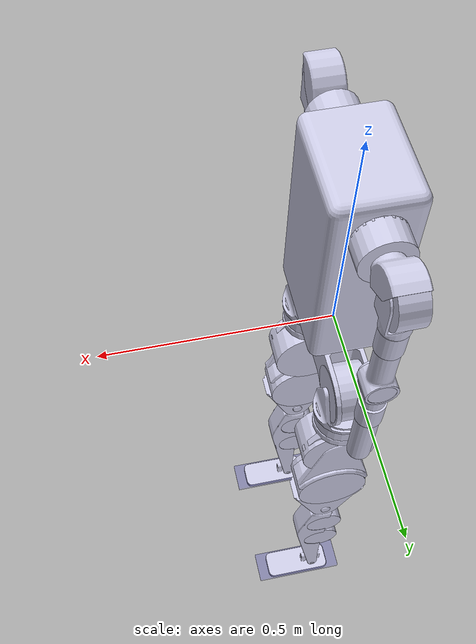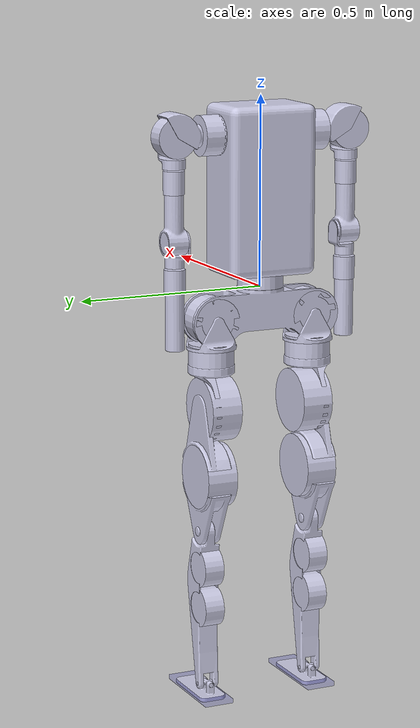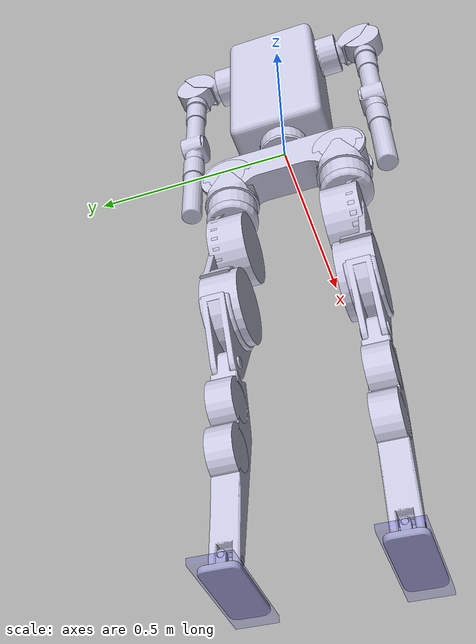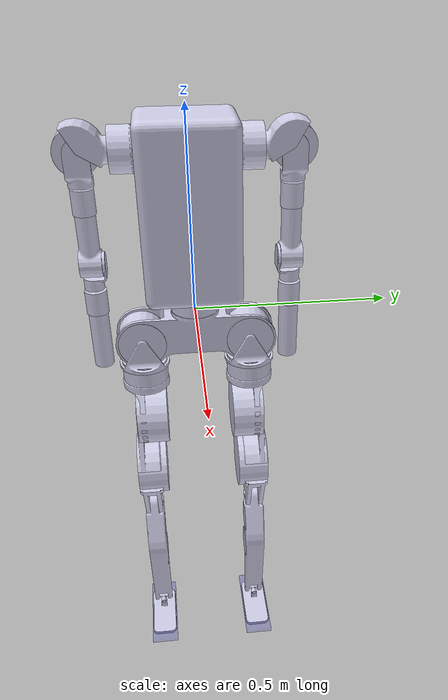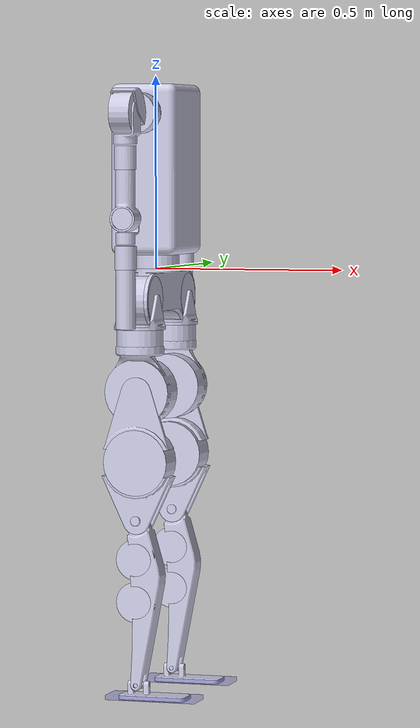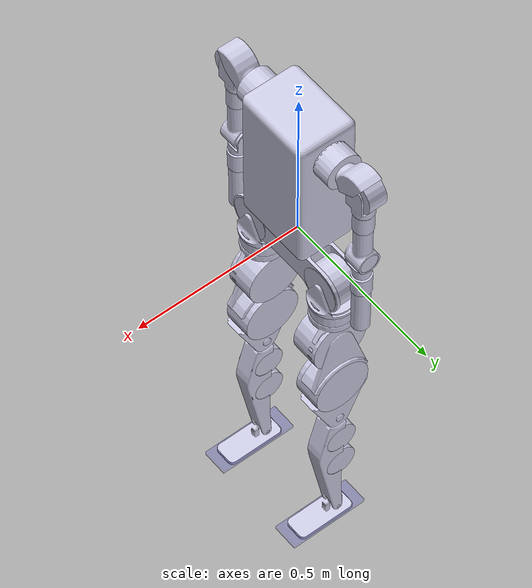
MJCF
<mujoco model="humanoid_ryp_merged">
  <compiler angle="radian" meshdir="meshes/"/>

  <asset>
    <mesh name="pelvis_link" file="pelvis_link.stl"/>
    <mesh name="left_hip_pitch_link" file="left_hip_pitch_link.stl"/>
    <mesh name="left_hip_roll_link" file="left_hip_roll_link.stl"/>
    <mesh name="left_hip_yaw_link" file="left_hip_yaw_link.stl"/>
    <mesh name="left_knee_pitch_link" file="left_knee_pitch_link.stl"/>
    <mesh name="left_ankle_pitch_link" file="left_ankle_pitch_link.stl"/>
    <mesh name="left_ankle_roll_link" file="left_ankle_roll_link.stl"/>
    <mesh name="right_hip_pitch_link" file="right_hip_pitch_link.stl"/>
    <mesh name="right_hip_roll_link" file="right_hip_roll_link.stl"/>
    <mesh name="right_hip_yaw_link" file="right_hip_yaw_link.stl"/>
    <mesh name="right_knee_pitch_link" file="right_knee_pitch_link.stl"/>
    <mesh name="right_ankle_pitch_link" file="right_ankle_pitch_link.stl"/>
    <mesh name="right_ankle_roll_link" file="right_ankle_roll_link.stl"/>
    <mesh name="torso_link" file="torso_link.stl"/>
    <mesh name="left_shoulder_pitch_link" file="left_shoulder_pitch_link.stl"/>
    <mesh name="left_shoulder_roll_link" file="left_shoulder_roll_link.stl"/>
    <mesh name="left_shoulder_yaw_link" file="left_shoulder_yaw_link.stl"/>
    <mesh name="left_elbow_pitch_link" file="left_elbow_pitch_link.stl"/>
    <mesh name="left_elbow_yaw_link" file="left_elbow_yaw_link.stl"/>
    <mesh name="right_shoulder_pitch_link" file="right_shoulder_pitch_link.stl"/>
    <mesh name="right_shoulder_roll_link" file="right_shoulder_roll_link.stl"/>
    <mesh name="right_shoulder_yaw_link" file="right_shoulder_yaw_link.stl"/>
    <mesh name="right_elbow_pitch_link" file="right_elbow_pitch_link.stl"/>
    <mesh name="right_elbow_yaw_link" file="right_elbow_yaw_link.stl"/>
  </asset>

  <worldbody>
    <body name="root">
      <inertial pos="0.000208719 -6.88131e-05 -0.053816" quat="0.707231 0.706977 -0.0020216 0.00199889" mass="8.47532" diaginertia="0.124667 0.111724 0.0247263"/>
      <joint name="floating_base_joint" type="free" limited="false" actuatorfrclimited="false"/>
      <geom type="mesh" contype="0" conaffinity="0" rgba="0.8 0.8 0.9 1" mesh="pelvis_link"/>
      <geom size="0.062 0.0425" pos="0.0005 0.139997 -0.077" quat="0.70711 0 0.707103 0" type="cylinder" contype="0" conaffinity="0" rgba="0.8 0.8 0.9 1"/>
      <geom size="0.062 0.0425" pos="0.0005 -0.140003 -0.077" quat="0.70711 0 0.707103 0" type="cylinder" contype="0" conaffinity="0" rgba="0.8 0.8 0.9 1"/>
      <geom size="0.06 0.03205" pos="5.16504e-07 -5.04132e-08 0.0250091" type="cylinder" contype="0" conaffinity="0" rgba="0.8 0.8 0.9 1"/>
      <site name="imu_mount" pos="0 0 0"/>
      <site name="torso_mount" pos="0 0 0.0475"/>
      <site name="imu_site" pos="0 0 0"/>
      <body name="left_hip_roll_link" pos="0.043 0.14 -0.077">
        <inertial pos="-0.0424996 8.50001e-08 -0.0817088" quat="9.67166e-07 0.70711 9.67175e-07 0.707104" mass="1.95758" diaginertia="0.00390852 0.00350271 0.00300279"/>
        <joint name="left_hip_roll_joint" pos="0 0 0" axis="1 0 0" range="-0.5 1.047" armature="0.32256" damping="0.766" frictionloss="2.492"/>
        <geom type="mesh" contype="0" conaffinity="0" rgba="0.8 0.8 0.9 1" mesh="left_hip_roll_link"/>
        <geom size="0.06 0.03205" pos="-0.0424995 1.07586e-07 -0.0930091" type="cylinder" contype="0" conaffinity="0" rgba="0.8 0.8 0.9 1"/>
        <body name="left_hip_yaw_link" pos="-0.0425 7.10469e-08 -0.1155">
          <inertial pos="-8.15282e-05 -0.0056514 -0.107013" quat="0.706833 -0.0175567 0.018256 0.706927" mass="3.95732" diaginertia="0.0184829 0.0140436 0.0093499"/>
          <joint name="left_hip_yaw_joint" pos="0 0 0" axis="0 0 1" range="-2.722 2.722" armature="0.061488" damping="0.0069" frictionloss="0.576"/>
          <geom type="mesh" contype="0" conaffinity="0" rgba="0.8 0.8 0.9 1" mesh="left_hip_yaw_link"/>
          <geom size="0.085 0.0415" pos="-0.000100823 -0.008554 -0.121217" quat="0.70711 0.707103 0 0" type="cylinder" contype="0" conaffinity="0" rgba="0.8 0.8 0.9 1"/>
          <body name="left_hip_pitch_link" pos="0 0.0220001 -0.121">
            <inertial pos="-0.000160241 -0.0134881 -0.180496" quat="0.706764 -0.0149555 0.0149512 0.707133" mass="4.76011" diaginertia="0.0325838 0.0264769 0.0112813"/>
            <joint name="left_hip_pitch_joint" pos="0 0 0" axis="0 1 0" range="-3.1415 3.1415" armature="0.155952" damping="0.338" frictionloss="1.481"/>
            <geom type="mesh" contype="0" conaffinity="0" rgba="0.8 0.8 0.9 1" mesh="left_hip_pitch_link"/>
            <geom size="0.085 0.0415" pos="-0.000238364 -0.0176458 -0.179979" quat="0.70711 0.707103 0 0" type="cylinder" contype="0" conaffinity="0" rgba="0.8 0.8 0.9 1"/>
            <body name="left_knee_pitch_link" pos="0 -0.0091998 -0.33">
              <inertial pos="0.00791673 1.09261e-07 -0.172865" quat="0.70701 -0.00277597 -0.00195185 0.707195" mass="3.05882" diaginertia="0.0384643 0.0371959 0.0031252"/>
              <joint name="left_knee_pitch_joint" pos="0 0 0" axis="0 1 0" range="0 2.007" armature="0.155952" damping="0.338" frictionloss="1.481"/>
              <geom type="mesh" contype="0" conaffinity="0" rgba="0.8 0.8 0.9 1" mesh="left_knee_pitch_link"/>
              <geom size="0.0525 0.027" pos="-0.00015591 0.0004461 -0.100101" quat="0.70711 0.707103 0 0" type="cylinder" contype="0" conaffinity="0" rgba="0.8 0.8 0.9 1"/>
              <geom size="0.0525 0.027" pos="-0.000319571 -0.0004459 -0.209961" quat="0.70711 0.707103 0 0" type="cylinder" contype="0" conaffinity="0" rgba="0.8 0.8 0.9 1"/>
              <body name="left_ankle_pitch_link" pos="-0.000857798 2.61427e-07 -0.424999">
                <inertial pos="1.5474e-09 -1.5474e-09 8.61155e-09" quat="0.500032 0.500032 -0.499968 0.499968" mass="0.0915496" diaginertia="2.67722e-05 1.42226e-05 1.42226e-05"/>
                <joint name="left_ankle_pitch_joint" pos="0 0 0" axis="0 1 0" range="-1.221 0.872" armature="0.043416" damping="0.028" frictionloss="0.876"/>
                <geom type="mesh" contype="0" conaffinity="0" rgba="0.8 0.8 0.9 1" mesh="left_ankle_pitch_link"/>
                <body name="left_ankle_roll_link">
                  <inertial pos="0.0388421 1.81631e-08 -0.0295267" quat="0 0.715124 0 0.698997" mass="1.02847" diaginertia="0.00308315 0.00269298 0.000478241"/>
                  <joint name="left_ankle_roll_joint" pos="0 0 0" axis="1 0 0" range="-0.436 0.436" armature="0.043416" damping="0.028" frictionloss="0.876"/>
                  <geom type="mesh" contype="0" conaffinity="0" rgba="0.8 0.8 0.9 1" mesh="left_ankle_roll_link"/>
                  <geom name="left_foot_collision" size="0.12 0.04 0.006" pos="0.04135 0 -0.032" type="box" group="1" rgba="0 0 0.7 0.1"/>
                  <body name="left_foot" pos="0.04135 0 -0.037">
                    <inertial pos="0 0 0" mass="1e-06" diaginertia="1e-09 1e-09 1e-09"/>
                  </body>
                </body>
              </body>
            </body>
          </body>
        </body>
      </body>
      <body name="right_hip_roll_link" pos="0.043 -0.14 -0.077">
        <inertial pos="-0.0424996 3.47404e-08 -0.0817088" quat="6.69514e-07 0.70711 6.6952e-07 0.707104" mass="1.95758" diaginertia="0.00390852 0.00350271 0.00300279"/>
        <joint name="right_hip_roll_joint" pos="0 0 0" axis="1 0 0" range="-1.047 0.5" armature="0.32256" damping="0.766" frictionloss="2.492"/>
        <geom type="mesh" contype="0" conaffinity="0" rgba="0.8 0.8 0.9 1" mesh="right_hip_roll_link"/>
        <geom size="0.06 0.03205" pos="-0.0424995 5.03756e-08 -0.0930091" type="cylinder" contype="0" conaffinity="0" rgba="0.8 0.8 0.9 1"/>
        <body name="right_hip_yaw_link" pos="-0.0425 0 -0.1155">
          <inertial pos="-8.15502e-05 0.00565149 -0.106662" quat="0.706929 0.0181786 -0.0174774 0.706835" mass="3.95732" diaginertia="0.0184432 0.0140043 0.00935021"/>
          <joint name="right_hip_yaw_joint" pos="0 0 0" axis="0 0 1" range="-2.722 2.722" armature="0.061488" damping="0.0069" frictionloss="0.576"/>
          <geom type="mesh" contype="0" conaffinity="0" rgba="0.8 0.8 0.9 1" mesh="right_hip_yaw_link"/>
          <geom size="0.085 0.0415" pos="-0.00010085 0.0085541 -0.120783" quat="0.70711 0.707103 0 0" type="cylinder" contype="0" conaffinity="0" rgba="0.8 0.8 0.9 1"/>
          <body name="right_hip_pitch_link" pos="0 -0.022 -0.121">
            <inertial pos="-9.24443e-05 0.0134882 -0.180379" quat="0.707056 0.0149129 -0.0149165 0.706843" mass="4.76011" diaginertia="0.0325842 0.0264775 0.0112815"/>
            <joint name="right_hip_pitch_joint" pos="0 0 0" axis="0 1 0" range="-3.1415 3.1415" armature="0.155952" damping="0.338" frictionloss="1.481"/>
            <geom type="mesh" contype="0" conaffinity="0" rgba="0.8 0.8 0.9 1" mesh="right_hip_pitch_link"/>
            <geom size="0.085 0.0415" pos="-0.000137514 0.0176459 -0.179804" quat="0.70711 0.707103 0 0" type="cylinder" contype="0" conaffinity="0" rgba="0.8 0.8 0.9 1"/>
            <body name="right_knee_pitch_link" pos="0 0.0092 -0.33">
              <inertial pos="0.00818566 3.81344e-10 -0.172815" quat="0.707204 -0.00265843 -0.00348431 0.706996" mass="3.05882" diaginertia="0.0384988 0.0372265 0.00312924"/>
              <joint name="right_knee_pitch_joint" pos="0 0 0" axis="0 1 0" range="0 2.007" armature="0.155952" damping="0.338" frictionloss="1.481"/>
              <geom type="mesh" contype="0" conaffinity="0" rgba="0.8 0.8 0.9 1" mesh="right_knee_pitch_link"/>
              <geom size="0.0525 0.027" pos="-3.92528e-05 -0.000446 -0.0998958" quat="0.70711 0.707103 0 0" type="cylinder" contype="0" conaffinity="0" rgba="0.8 0.8 0.9 1"/>
              <geom size="0.0525 0.027" pos="-0.000101531 0.000446 -0.210046" quat="0.70711 0.707103 0 0" type="cylinder" contype="0" conaffinity="0" rgba="0.8 0.8 0.9 1"/>
              <body name="right_ankle_pitch_link" pos="0 0 -0.425">
                <inertial pos="1.5474e-09 -1.5474e-09 0" quat="0.5 0.5 -0.5 0.5" mass="0.0915496" diaginertia="2.67722e-05 1.42226e-05 1.42226e-05"/>
                <joint name="right_ankle_pitch_joint" pos="0 0 0" axis="0 1 0" range="-1.221 0.872" armature="0.043416" damping="0.028" frictionloss="0.876"/>
                <geom type="mesh" contype="0" conaffinity="0" rgba="0.8 0.8 0.9 1" mesh="right_ankle_pitch_link"/>
                <body name="right_ankle_roll_link">
                  <inertial pos="0.0388459 0 -0.0295218" quat="0 0.71508 0 0.699043" mass="1.02847" diaginertia="0.00308315 0.00269298 0.000478241"/>
                  <joint name="right_ankle_roll_joint" pos="0 0 0" axis="1 0 0" range="-0.436 0.436" armature="0.043416" damping="0.028" frictionloss="0.876"/>
                  <geom type="mesh" contype="0" conaffinity="0" rgba="0.8 0.8 0.9 1" mesh="right_ankle_roll_link"/>
                  <geom name="right_foot_collision" size="0.12 0.04 0.006" pos="0.04135 0 -0.032" type="box" group="1" rgba="0 0 0.7 0.1"/>
                  <body name="right_foot" pos="0.04135 0 -0.037">
                    <inertial pos="0 0 0" mass="1e-06" diaginertia="1e-09 1e-09 1e-09"/>
                  </body>
                </body>
              </body>
            </body>
          </body>
        </body>
      </body>
      <body name="torso_yaw_link" pos="0 0 0.0475">
        <inertial pos="0 0 0.227807" quat="1 0 0 -0.000206205" mass="15.3022" diaginertia="0.348334 0.281258 0.137515"/>
        <joint name="torso_yaw_joint" pos="0 0 0" axis="0 0 1" range="-1.5707 1.5707" armature="0.061488" damping="0.0069" frictionloss="0.576"/>
        <geom type="mesh" contype="0" conaffinity="0" rgba="0.8 0.8 0.9 1" mesh="torso_link"/>
        <geom size="0.0525 0.027" pos="0.000111292 0.147954 0.354996" quat="0.70711 0.707103 0 0" type="cylinder" contype="0" conaffinity="0" rgba="0.8 0.8 0.9 1"/>
        <geom size="0.0525 0.027" pos="-0.000111292 -0.147954 0.354996" quat="0.70711 0.707103 0 0" type="cylinder" contype="0" conaffinity="0" rgba="0.8 0.8 0.9 1"/>
        <site name="left_arm_mount" pos="0 0.176 0.355"/>
        <site name="right_arm_mount" pos="0 -0.176 0.355"/>
        <body name="torso" pos="0 0 0.355">
          <inertial pos="0 0 0" mass="1e-06" diaginertia="1e-09 1e-09 1e-09"/>
        </body>
        <body name="left_shoulder_pitch_link" pos="0 0.176 0.355">
          <inertial pos="-0.00306315 0.0620754 0.00444058" quat="0.727835 0.685332 0.0237004 0.00389183" mass="1.0821" diaginertia="0.00182356 0.00132748 0.00115062"/>
          <joint name="left_shoulder_pitch_joint" pos="0 0 0" axis="0 1 0" range="-2.618 2.007" armature="0.043416" damping="0.028" frictionloss="0.876"/>
          <geom type="mesh" contype="0" conaffinity="0" rgba="0.8 0.8 0.9 1" mesh="left_shoulder_pitch_link"/>
          <geom size="0.0525 0.027" pos="-0.003946 0.0698986 -4.59265e-05" quat="0.70711 0 0.707103 0" type="cylinder" contype="0" conaffinity="0" rgba="0.8 0.8 0.9 1"/>
          <body name="left_shoulder_roll_link" pos="0.024 0.07 0">
            <inertial pos="-0.0192802 7.42705e-09 -0.0545648" quat="0.96696 -2.1985e-07 0.254927 -8.33909e-07" mass="0.28974" diaginertia="0.000310056 0.000288331 0.000120903"/>
            <joint name="left_shoulder_roll_joint" pos="0 0 0" axis="1 0 0" range="-0.175 2.531" armature="0.043416" damping="0.028" frictionloss="0.876"/>
            <geom type="mesh" contype="0" conaffinity="0" rgba="0.8 0.8 0.9 1" mesh="left_shoulder_roll_link"/>
            <body name="left_shoulder_yaw_link" pos="-0.027 0 -0.1405">
              <inertial pos="8.58845e-07 -0.00134537 -0.0559306" quat="0.999944 -0.0105981 2.27804e-05 -7.5063e-06" mass="1.1219" diaginertia="0.00562987 0.00560549 0.000486935"/>
              <joint name="left_shoulder_yaw_joint" pos="0 0 0" axis="0 0 1" range="-2.88 2.88" armature="0.0178848" damping="0.014" frictionloss="0.23"/>
              <geom type="mesh" contype="0" conaffinity="0" rgba="0.8 0.8 0.9 1" mesh="left_shoulder_yaw_link"/>
              <geom size="0.028 0.03025" pos="5.24476e-06 -5.62893e-06 0.026002" type="cylinder" contype="0" conaffinity="0" rgba="0.8 0.8 0.9 1"/>
              <geom size="0.028 0.03025" pos="-2.68858e-06 -0.003998 -0.128007" quat="0.70711 0.707103 0 0" type="cylinder" contype="0" conaffinity="0" rgba="0.8 0.8 0.9 1"/>
              <body name="left_elbow_pitch_link" pos="0 -0.03 -0.128">
                <inertial pos="-1.67859e-06 0.0265135 -0.0778141" quat="0.995929 0.09014 2.39106e-05 -5.21924e-05" mass="0.603963" diaginertia="0.000815049 0.000801572 0.000237622"/>
                <joint name="left_elbow_pitch_joint" pos="0 0 0" axis="0 1 0" range="-2.182 0" armature="0.0178848" damping="0.014" frictionloss="0.23"/>
                <geom type="mesh" contype="0" conaffinity="0" rgba="0.8 0.8 0.9 1" mesh="left_elbow_pitch_link"/>
                <geom size="0.028 0.03025" pos="-2.68858e-06 0.0290072 -0.099498" type="cylinder" contype="0" conaffinity="0" rgba="0.8 0.8 0.9 1"/>
                <body name="left_elbow_yaw_link" pos="0 0.029 -0.1255">
                  <inertial pos="0 0 -0.0779665" mass="0.306173" diaginertia="0.000668211 0.000668211 9.56405e-05"/>
                  <joint name="left_elbow_yaw_joint" pos="0 0 0" axis="0 0 1" range="-2.356 2.356" armature="0.0178848" damping="0.014" frictionloss="0.23"/>
                  <geom type="mesh" contype="0" conaffinity="0" rgba="0.8 0.8 0.9 1" mesh="left_elbow_yaw_link"/>
                  <body name="left_end_effector" pos="0 0 -0.155">
                    <inertial pos="0 0 0" mass="1e-06" diaginertia="1e-09 1e-09 1e-09"/>
                  </body>
                </body>
              </body>
            </body>
          </body>
        </body>
        <body name="right_shoulder_pitch_link" pos="0 -0.176 0.355">
          <inertial pos="-0.00306315 -0.0622329 0.00444058" quat="0.684116 0.728978 -0.00396618 -0.0236854" mass="1.0821" diaginertia="0.00182624 0.00133024 0.00115053"/>
          <joint name="right_shoulder_pitch_joint" pos="0 0 0" axis="0 1 0" range="-2.618 2.007" armature="0.043416" damping="0.028" frictionloss="0.876"/>
          <geom type="mesh" contype="0" conaffinity="0" rgba="0.8 0.8 0.9 1" mesh="right_shoulder_pitch_link"/>
          <geom size="0.0525 0.027" pos="-0.003946 -0.0701014 -4.59265e-05" quat="0.70711 0 0.707103 0" type="cylinder" contype="0" conaffinity="0" rgba="0.8 0.8 0.9 1"/>
          <body name="right_shoulder_roll_link" pos="0.024 -0.07 0">
            <inertial pos="-0.0192802 7.42705e-09 -0.0545648" quat="0.96696 -2.1985e-07 0.254927 -8.33909e-07" mass="0.28974" diaginertia="0.000310056 0.000288331 0.000120903"/>
            <joint name="right_shoulder_roll_joint" pos="0 0 0" axis="1 0 0" range="-2.531 0.175" armature="0.043416" damping="0.028" frictionloss="0.876"/>
            <geom type="mesh" contype="0" conaffinity="0" rgba="0.8 0.8 0.9 1" mesh="right_shoulder_roll_link"/>
            <body name="right_shoulder_yaw_link" pos="-0.027 0 -0.1405">
              <inertial pos="-8.59101e-07 0.00134537 -0.0559306" quat="0.999944 0.0105981 -2.278e-05 -7.5155e-06" mass="1.1219" diaginertia="0.00562987 0.00560549 0.000486935"/>
              <joint name="right_shoulder_yaw_joint" pos="0 0 0" axis="0 0 1" range="-2.88 2.88" armature="0.0178848" damping="0.014" frictionloss="0.23"/>
              <geom type="mesh" contype="0" conaffinity="0" rgba="0.8 0.8 0.9 1" mesh="right_shoulder_yaw_link"/>
              <geom size="0.028 0.03025" pos="-5.24476e-06 5.62893e-06 0.026002" type="cylinder" contype="0" conaffinity="0" rgba="0.8 0.8 0.9 1"/>
              <geom size="0.028 0.03025" pos="2.68858e-06 0.003998 -0.128007" quat="0.70711 0.707103 0 0" type="cylinder" contype="0" conaffinity="0" rgba="0.8 0.8 0.9 1"/>
              <body name="right_elbow_pitch_link" pos="0 0.03 -0.128">
                <inertial pos="-1.67789e-06 -0.0265045 -0.0778141" quat="0.995938 -0.0900385 2.39201e-05 5.22023e-05" mass="0.603963" diaginertia="0.000815022 0.00080153 0.000237637"/>
                <joint name="right_elbow_pitch_joint" pos="0 0 0" axis="0 1 0" range="-2.182 0" armature="0.0178848" damping="0.014" frictionloss="0.23"/>
                <geom type="mesh" contype="0" conaffinity="0" rgba="0.8 0.8 0.9 1" mesh="right_elbow_pitch_link"/>
                <geom size="0.028 0.03025" pos="-2.68858e-06 -0.0289928 -0.099498" type="cylinder" contype="0" conaffinity="0" rgba="0.8 0.8 0.9 1"/>
                <body name="right_elbow_yaw_link" pos="0 -0.029 -0.1255">
                  <inertial pos="0 0 -0.0779665" mass="0.306173" diaginertia="0.000668211 0.000668211 9.56405e-05"/>
                  <joint name="right_elbow_yaw_joint" pos="0 0 0" axis="0 0 1" range="-2.356 2.356" armature="0.0178848" damping="0.014" frictionloss="0.23"/>
                  <geom type="mesh" contype="0" conaffinity="0" rgba="0.8 0.8 0.9 1" mesh="right_elbow_yaw_link"/>
                  <body name="right_end_effector" pos="0 0 -0.155">
                    <inertial pos="0 0 0" mass="1e-06" diaginertia="1e-09 1e-09 1e-09"/>
                  </body>
                </body>
              </body>
            </body>
          </body>
        </body>
      </body>
    </body>
  </worldbody>

  <actuator>
    <general name="left_hip_pitch_act" joint="left_hip_pitch_joint" ctrllimited="true" ctrlrange="-380 380"/>
    <general name="left_hip_roll_act" joint="left_hip_roll_joint" ctrllimited="true" ctrlrange="-360 360"/>
    <general name="left_hip_yaw_act" joint="left_hip_yaw_joint" ctrllimited="true" ctrlrange="-150 150"/>
    <general name="left_knee_pitch_act" joint="left_knee_pitch_joint" ctrllimited="true" ctrlrange="-380 380"/>
    <general name="left_ankle_pitch_act" joint="left_ankle_pitch_joint" ctrllimited="true" ctrlrange="-90 90"/>
    <general name="left_ankle_roll_act" joint="left_ankle_roll_joint" ctrllimited="true" ctrlrange="-90 90"/>
    <general name="right_hip_pitch_act" joint="right_hip_pitch_joint" ctrllimited="true" ctrlrange="-380 380"/>
    <general name="right_hip_roll_act" joint="right_hip_roll_joint" ctrllimited="true" ctrlrange="-360 360"/>
    <general name="right_hip_yaw_act" joint="right_hip_yaw_joint" ctrllimited="true" ctrlrange="-150 150"/>
    <general name="right_knee_pitch_act" joint="right_knee_pitch_joint" ctrllimited="true" ctrlrange="-380 380"/>
    <general name="right_ankle_pitch_act" joint="right_ankle_pitch_joint" ctrllimited="true" ctrlrange="-90 90"/>
    <general name="right_ankle_roll_act" joint="right_ankle_roll_joint" ctrllimited="true" ctrlrange="-90 90"/>
    <general name="torso_yaw_act" joint="torso_yaw_joint" ctrllimited="true" ctrlrange="-150 150"/>
    <general name="left_shoulder_pitch_act" joint="left_shoulder_pitch_joint" ctrllimited="true" ctrlrange="-90 90"/>
    <general name="left_shoulder_roll_act" joint="left_shoulder_roll_joint" ctrllimited="true" ctrlrange="-90 90"/>
    <general name="left_shoulder_yaw_act" joint="left_shoulder_yaw_joint" ctrllimited="true" ctrlrange="-36 36"/>
    <general name="left_elbow_pitch_act" joint="left_elbow_pitch_joint" ctrllimited="true" ctrlrange="-36 36"/>
    <general name="left_elbow_yaw_act" joint="left_elbow_yaw_joint" ctrllimited="true" ctrlrange="-36 36"/>
    <general name="right_shoulder_pitch_act" joint="right_shoulder_pitch_joint" ctrllimited="true" ctrlrange="-90 90"/>
    <general name="right_shoulder_roll_act" joint="right_shoulder_roll_joint" ctrllimited="true" ctrlrange="-90 90"/>
    <general name="right_shoulder_yaw_act" joint="right_shoulder_yaw_joint" ctrllimited="true" ctrlrange="-36 36"/>
    <general name="right_elbow_pitch_act" joint="right_elbow_pitch_joint" ctrllimited="true" ctrlrange="-36 36"/>
    <general name="right_elbow_yaw_act" joint="right_elbow_yaw_joint" ctrllimited="true" ctrlrange="-36 36"/>
  </actuator>

  <sensor>
    <accelerometer site="imu_site" name="accel" noise="0.9"/>
    <gyro site="imu_site" name="gyro" noise="0.026"/>
    <framequat objtype="site" objname="imu_site" name="frame_quat" noise="0.1072"/>
  </sensor>
</mujoco>
